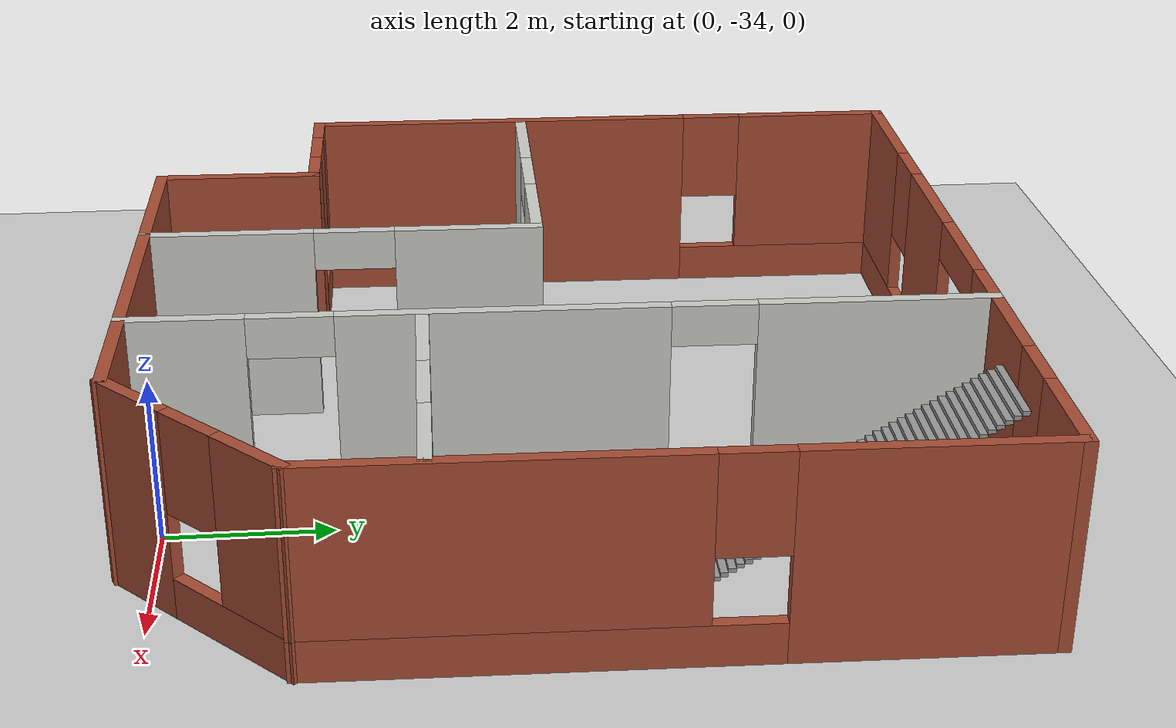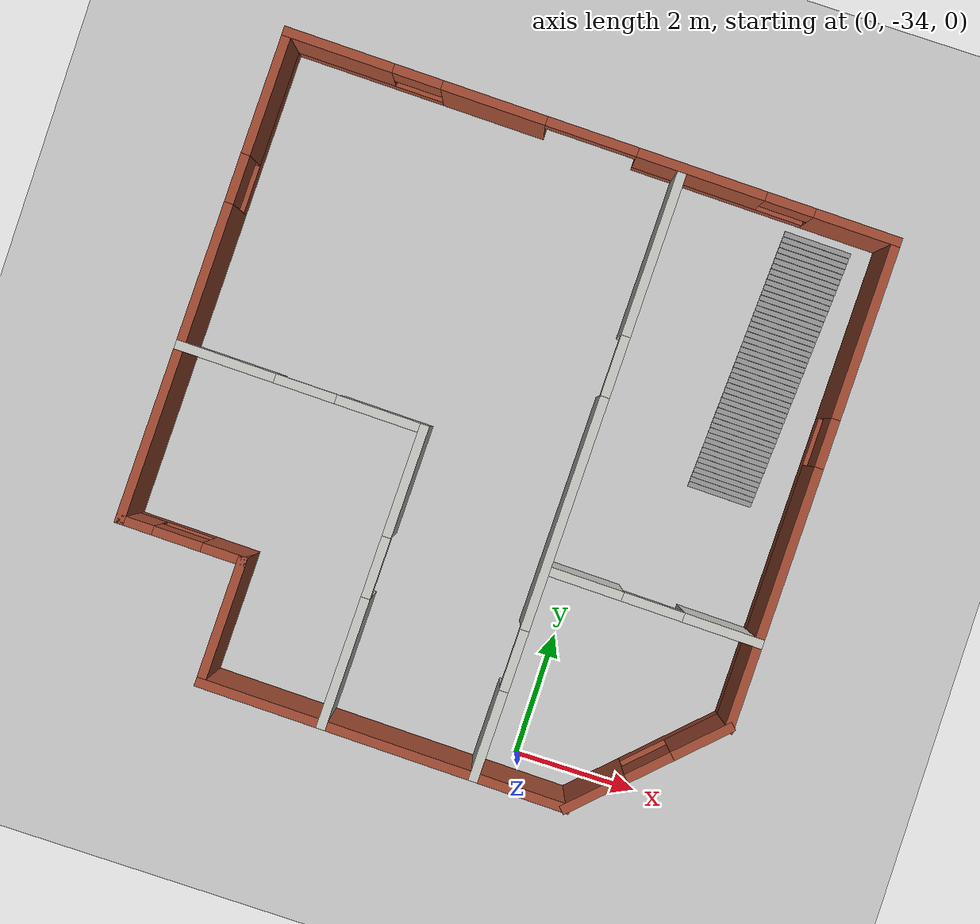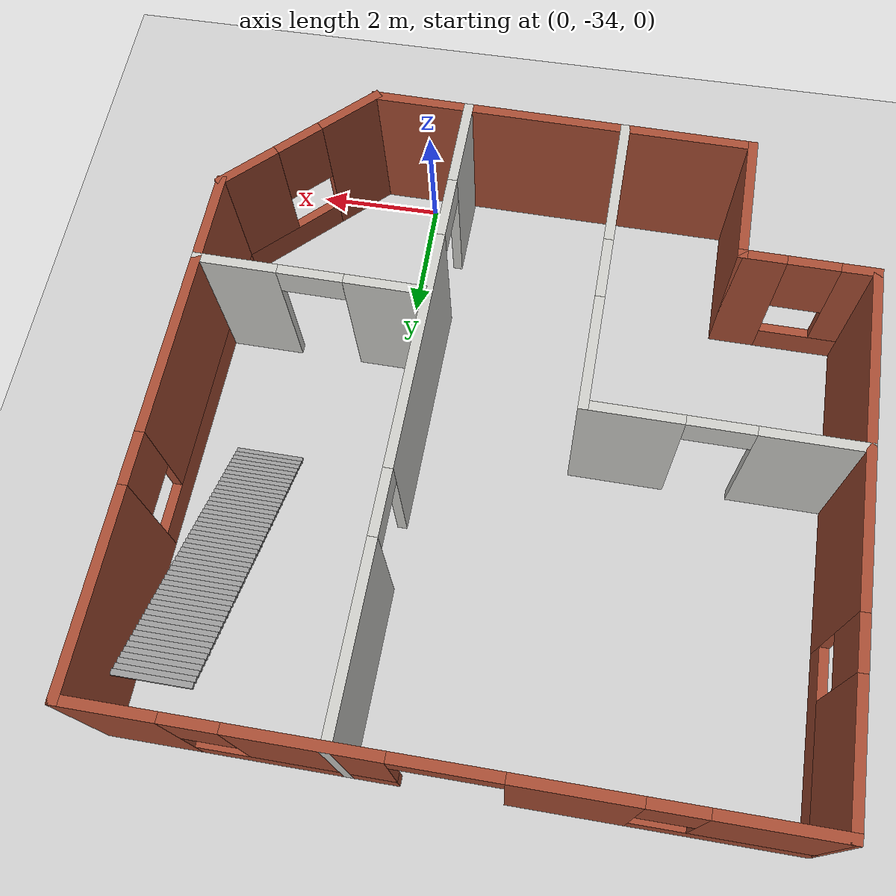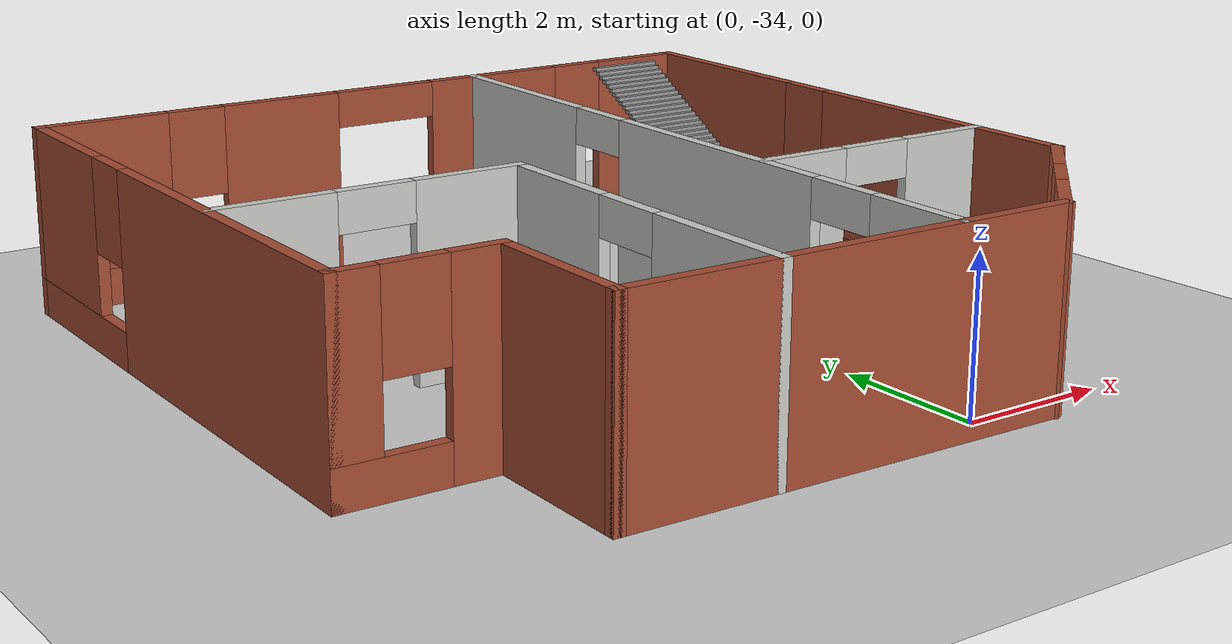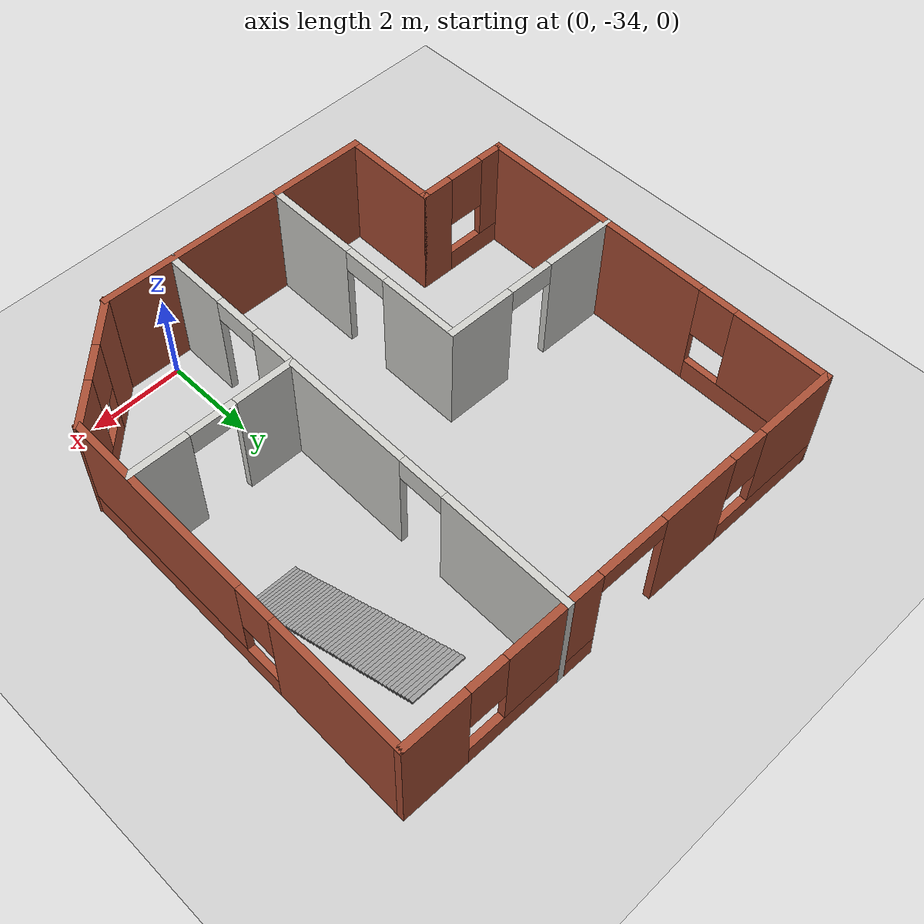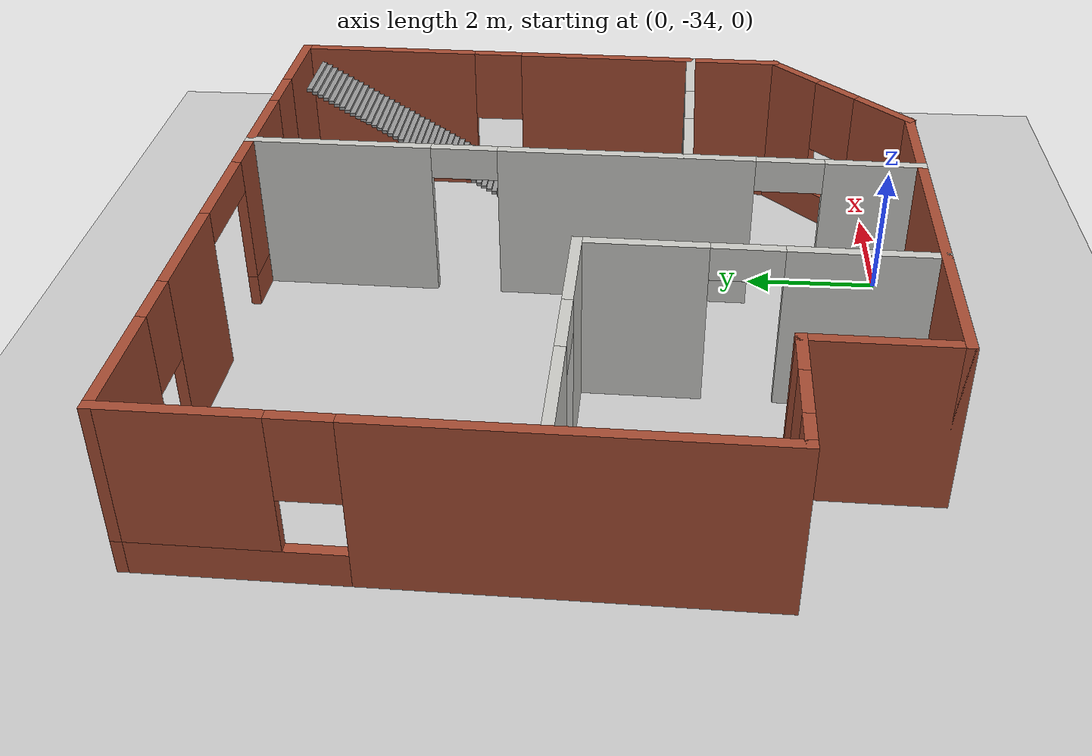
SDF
<sdf version="1.6">
 <world name="default">
  <model name="ground_plane">
   <static>1</static>
   <link name="link">
    <collision name="collision">
     <geometry><plane><normal>0 0 1</normal><size>100 100</size></plane></geometry>
     <surface><friction><ode><mu>100</mu><mu2>50</mu2></ode></friction></surface>
    </collision>
    <visual name="visual">
     <cast_shadows>0</cast_shadows>
     <geometry><plane><normal>0 0 1</normal><size>100 100</size></plane></geometry>
     <material>
      <script><uri>file://media/materials/scripts/gazebo.material</uri><name>Gazebo/Grey</name></script>
     </material>
    </visual>
   </link>
  </model>
  <model name="Multi_10home1">
   <pose>-1.99384 -29.3266 0 0 -0 3.1248</pose>
   <link name="Stairs_2">
    <visual name="Stairs_2_Visual_0">
     <pose>-3.83186 -0.411164 0.025 0 -0 0</pose>
     <geometry><box><size>1.08 0.0846 0.05</size></box></geometry>
     <material>
      <script><uri>file://media/materials/scripts/gazebo.material</uri><name>Gazebo/Grey</name></script>
      <ambient>1 1 1 1</ambient>
     </material>
     <meta><layer>0</layer></meta>
    </visual>
    <collision name="Stairs_2_Collision_0">
     <geometry><box><size>1.08 0.0846 0.05</size></box></geometry>
     <pose>-3.83186 -0.411164 0.025 0 -0 0</pose>
    </collision>
    <visual name="Stairs_2_Visual_1">
     <pose>-3.83186 -0.495764 0.075 0 -0 0</pose>
     <geometry><box><size>1.08 0.0846 0.05</size></box></geometry>
     <material>
      <script><uri>file://media/materials/scripts/gazebo.material</uri><name>Gazebo/Grey</name></script>
      <ambient>1 1 1 1</ambient>
     </material>
     <meta><layer>0</layer></meta>
    </visual>
    <collision name="Stairs_2_Collision_1">
     <geometry><box><size>1.08 0.0846 0.05</size></box></geometry>
     <pose>-3.83186 -0.495764 0.075 0 -0 0</pose>
    </collision>
    <visual name="Stairs_2_Visual_2">
     <pose>-3.83186 -0.580364 0.125 0 -0 0</pose>
     <geometry><box><size>1.08 0.0846 0.05</size></box></geometry>
     <material>
      <script><uri>file://media/materials/scripts/gazebo.material</uri><name>Gazebo/Grey</name></script>
      <ambient>1 1 1 1</ambient>
     </material>
     <meta><layer>0</layer></meta>
    </visual>
    <collision name="Stairs_2_Collision_2">
     <geometry><box><size>1.08 0.0846 0.05</size></box></geometry>
     <pose>-3.83186 -0.580364 0.125 0 -0 0</pose>
    </collision>
    <visual name="Stairs_2_Visual_3">
     <pose>-3.83186 -0.664964 0.175 0 -0 0</pose>
     <geometry><box><size>1.08 0.0846 0.05</size></box></geometry>
     <material>
      <script><uri>file://media/materials/scripts/gazebo.material</uri><name>Gazebo/Grey</name></script>
      <ambient>1 1 1 1</ambient>
     </material>
     <meta><layer>0</layer></meta>
    </visual>
    <collision name="Stairs_2_Collision_3">
     <geometry><box><size>1.08 0.0846 0.05</size></box></geometry>
     <pose>-3.83186 -0.664964 0.175 0 -0 0</pose>
    </collision>
    <visual name="Stairs_2_Visual_4">
     <pose>-3.83186 -0.749564 0.225 0 -0 0</pose>
     <geometry><box><size>1.08 0.0846 0.05</size></box></geometry>
     <material>
      <script><uri>file://media/materials/scripts/gazebo.material</uri><name>Gazebo/Grey</name></script>
      <ambient>1 1 1 1</ambient>
     </material>
     <meta><layer>0</layer></meta>
    </visual>
    <collision name="Stairs_2_Collision_4">
     <geometry><box><size>1.08 0.0846 0.05</size></box></geometry>
     <pose>-3.83186 -0.749564 0.225 0 -0 0</pose>
    </collision>
    <visual name="Stairs_2_Visual_5">
     <pose>-3.83186 -0.834164 0.275 0 -0 0</pose>
     <geometry><box><size>1.08 0.0846 0.05</size></box></geometry>
     <material>
      <script><uri>file://media/materials/scripts/gazebo.material</uri><name>Gazebo/Grey</name></script>
      <ambient>1 1 1 1</ambient>
     </material>
     <meta><layer>0</layer></meta>
    </visual>
    <collision name="Stairs_2_Collision_5">
     <geometry><box><size>1.08 0.0846 0.05</size></box></geometry>
     <pose>-3.83186 -0.834164 0.275 0 -0 0</pose>
    </collision>
    <visual name="Stairs_2_Visual_6">
     <pose>-3.83186 -0.918764 0.325 0 -0 0</pose>
     <geometry><box><size>1.08 0.0846 0.05</size></box></geometry>
     <material>
      <script><uri>file://media/materials/scripts/gazebo.material</uri><name>Gazebo/Grey</name></script>
      <ambient>1 1 1 1</ambient>
     </material>
     <meta><layer>0</layer></meta>
    </visual>
    <collision name="Stairs_2_Collision_6">
     <geometry><box><size>1.08 0.0846 0.05</size></box></geometry>
     <pose>-3.83186 -0.918764 0.325 0 -0 0</pose>
    </collision>
    <visual name="Stairs_2_Visual_7">
     <pose>-3.83186 -1.00336 0.375 0 -0 0</pose>
     <geometry><box><size>1.08 0.0846 0.05</size></box></geometry>
     <material>
      <script><uri>file://media/materials/scripts/gazebo.material</uri><name>Gazebo/Grey</name></script>
      <ambient>1 1 1 1</ambient>
     </material>
     <meta><layer>0</layer></meta>
    </visual>
    <collision name="Stairs_2_Collision_7">
     <geometry><box><size>1.08 0.0846 0.05</size></box></geometry>
     <pose>-3.83186 -1.00336 0.375 0 -0 0</pose>
    </collision>
    <visual name="Stairs_2_Visual_8">
     <pose>-3.83186 -1.08796 0.425 0 -0 0</pose>
     <geometry><box><size>1.08 0.0846 0.05</size></box></geometry>
     <material>
      <script><uri>file://media/materials/scripts/gazebo.material</uri><name>Gazebo/Grey</name></script>
      <ambient>1 1 1 1</ambient>
     </material>
     <meta><layer>0</layer></meta>
    </visual>
    <collision name="Stairs_2_Collision_8">
     <geometry><box><size>1.08 0.0846 0.05</size></box></geometry>
     <pose>-3.83186 -1.08796 0.425 0 -0 0</pose>
    </collision>
    <visual name="Stairs_2_Visual_9">
     <pose>-3.83186 -1.17256 0.475 0 -0 0</pose>
     <geometry><box><size>1.08 0.0846 0.05</size></box></geometry>
     <material>
      <script><uri>file://media/materials/scripts/gazebo.material</uri><name>Gazebo/Grey</name></script>
      <ambient>1 1 1 1</ambient>
     </material>
     <meta><layer>0</layer></meta>
    </visual>
    <collision name="Stairs_2_Collision_9">
     <geometry><box><size>1.08 0.0846 0.05</size></box></geometry>
     <pose>-3.83186 -1.17256 0.475 0 -0 0</pose>
    </collision>
    <visual name="Stairs_2_Visual_10">
     <pose>-3.83186 -1.25716 0.525 0 -0 0</pose>
     <geometry><box><size>1.08 0.0846 0.05</size></box></geometry>
     <material>
      <script><uri>file://media/materials/scripts/gazebo.material</uri><name>Gazebo/Grey</name></script>
      <ambient>1 1 1 1</ambient>
     </material>
     <meta><layer>0</layer></meta>
    </visual>
    <collision name="Stairs_2_Collision_10">
     <geometry><box><size>1.08 0.0846 0.05</size></box></geometry>
     <pose>-3.83186 -1.25716 0.525 0 -0 0</pose>
    </collision>
    <visual name="Stairs_2_Visual_11">
     <pose>-3.83186 -1.34176 0.575 0 -0 0</pose>
     <geometry><box><size>1.08 0.0846 0.05</size></box></geometry>
     <material>
      <script><uri>file://media/materials/scripts/gazebo.material</uri><name>Gazebo/Grey</name></script>
      <ambient>1 1 1 1</ambient>
     </material>
     <meta><layer>0</layer></meta>
    </visual>
    <collision name="Stairs_2_Collision_11">
     <geometry><box><size>1.08 0.0846 0.05</size></box></geometry>
     <pose>-3.83186 -1.34176 0.575 0 -0 0</pose>
    </collision>
    <visual name="Stairs_2_Visual_12">
     <pose>-3.83186 -1.42636 0.625 0 -0 0</pose>
     <geometry><box><size>1.08 0.0846 0.05</size></box></geometry>
     <material>
      <script><uri>file://media/materials/scripts/gazebo.material</uri><name>Gazebo/Grey</name></script>
      <ambient>1 1 1 1</ambient>
     </material>
     <meta><layer>0</layer></meta>
    </visual>
    <collision name="Stairs_2_Collision_12">
     <geometry><box><size>1.08 0.0846 0.05</size></box></geometry>
     <pose>-3.83186 -1.42636 0.625 0 -0 0</pose>
    </collision>
    <visual name="Stairs_2_Visual_13">
     <pose>-3.83186 -1.51096 0.675 0 -0 0</pose>
     <geometry><box><size>1.08 0.0846 0.05</size></box></geometry>
     <material>
      <script><uri>file://media/materials/scripts/gazebo.material</uri><name>Gazebo/Grey</name></script>
      <ambient>1 1 1 1</ambient>
     </material>
     <meta><layer>0</layer></meta>
    </visual>
    <collision name="Stairs_2_Collision_13">
     <geometry><box><size>1.08 0.0846 0.05</size></box></geometry>
     <pose>-3.83186 -1.51096 0.675 0 -0 0</pose>
    </collision>
    <visual name="Stairs_2_Visual_14">
     <pose>-3.83186 -1.59556 0.725 0 -0 0</pose>
     <geometry><box><size>1.08 0.0846 0.05</size></box></geometry>
     <material>
      <script><uri>file://media/materials/scripts/gazebo.material</uri><name>Gazebo/Grey</name></script>
      <ambient>1 1 1 1</ambient>
     </material>
     <meta><layer>0</layer></meta>
    </visual>
    <collision name="Stairs_2_Collision_14">
     <geometry><box><size>1.08 0.0846 0.05</size></box></geometry>
     <pose>-3.83186 -1.59556 0.725 0 -0 0</pose>
    </collision>
    <visual name="Stairs_2_Visual_15">
     <pose>-3.83186 -1.68016 0.775 0 -0 0</pose>
     <geometry><box><size>1.08 0.0846 0.05</size></box></geometry>
     <material>
      <script><uri>file://media/materials/scripts/gazebo.material</uri><name>Gazebo/Grey</name></script>
      <ambient>1 1 1 1</ambient>
     </material>
     <meta><layer>0</layer></meta>
    </visual>
    <collision name="Stairs_2_Collision_15">
     <geometry><box><size>1.08 0.0846 0.05</size></box></geometry>
     <pose>-3.83186 -1.68016 0.775 0 -0 0</pose>
    </collision>
    <visual name="Stairs_2_Visual_16">
     <pose>-3.83186 -1.76476 0.825 0 -0 0</pose>
     <geometry><box><size>1.08 0.0846 0.05</size></box></geometry>
     <material>
      <script><uri>file://media/materials/scripts/gazebo.material</uri><name>Gazebo/Grey</name></script>
      <ambient>1 1 1 1</ambient>
     </material>
     <meta><layer>0</layer></meta>
    </visual>
    <collision name="Stairs_2_Collision_16">
     <geometry><box><size>1.08 0.0846 0.05</size></box></geometry>
     <pose>-3.83186 -1.76476 0.825 0 -0 0</pose>
    </collision>
    <visual name="Stairs_2_Visual_17">
     <pose>-3.83186 -1.84936 0.875 0 -0 0</pose>
     <geometry><box><size>1.08 0.0846 0.05</size></box></geometry>
     <material>
      <script><uri>file://media/materials/scripts/gazebo.material</uri><name>Gazebo/Grey</name></script>
      <ambient>1 1 1 1</ambient>
     </material>
     <meta><layer>0</layer></meta>
    </visual>
    <collision name="Stairs_2_Collision_17">
     <geometry><box><size>1.08 0.0846 0.05</size></box></geometry>
     <pose>-3.83186 -1.84936 0.875 0 -0 0</pose>
    </collision>
    <visual name="Stairs_2_Visual_18">
     <pose>-3.83186 -1.93396 0.925 0 -0 0</pose>
     <geometry><box><size>1.08 0.0846 0.05</size></box></geometry>
     <material>
      <script><uri>file://media/materials/scripts/gazebo.material</uri><name>Gazebo/Grey</name></script>
      <ambient>1 1 1 1</ambient>
     </material>
     <meta><layer>0</layer></meta>
    </visual>
    <collision name="Stairs_2_Collision_18">
     <geometry><box><size>1.08 0.0846 0.05</size></box></geometry>
     <pose>-3.83186 -1.93396 0.925 0 -0 0</pose>
    </collision>
    <visual name="Stairs_2_Visual_19">
     <pose>-3.83186 -2.01856 0.975 0 -0 0</pose>
     <geometry><box><size>1.08 0.0846 0.05</size></box></geometry>
     <material>
      <script><uri>file://media/materials/scripts/gazebo.material</uri><name>Gazebo/Grey</name></script>
      <ambient>1 1 1 1</ambient>
     </material>
     <meta><layer>0</layer></meta>
    </visual>
    <collision name="Stairs_2_Collision_19">
     <geometry><box><size>1.08 0.0846 0.05</size></box></geometry>
     <pose>-3.83186 -2.01856 0.975 0 -0 0</pose>
    </collision>
    <visual name="Stairs_2_Visual_20">
     <pose>-3.83186 -2.10316 1.025 0 -0 0</pose>
     <geometry><box><size>1.08 0.0846 0.05</size></box></geometry>
     <material>
      <script><uri>file://media/materials/scripts/gazebo.material</uri><name>Gazebo/Grey</name></script>
      <ambient>1 1 1 1</ambient>
     </material>
     <meta><layer>0</layer></meta>
    </visual>
    <collision name="Stairs_2_Collision_20">
     <geometry><box><size>1.08 0.0846 0.05</size></box></geometry>
     <pose>-3.83186 -2.10316 1.025 0 -0 0</pose>
    </collision>
    <visual name="Stairs_2_Visual_21">
     <pose>-3.83186 -2.18776 1.075 0 -0 0</pose>
     <geometry><box><size>1.08 0.0846 0.05</size></box></geometry>
     <material>
      <script><uri>file://media/materials/scripts/gazebo.material</uri><name>Gazebo/Grey</name></script>
      <ambient>1 1 1 1</ambient>
     </material>
     <meta><layer>0</layer></meta>
    </visual>
    <collision name="Stairs_2_Collision_21">
     <geometry><box><size>1.08 0.0846 0.05</size></box></geometry>
     <pose>-3.83186 -2.18776 1.075 0 -0 0</pose>
    </collision>
    <visual name="Stairs_2_Visual_22">
     <pose>-3.83186 -2.27236 1.125 0 -0 0</pose>
     <geometry><box><size>1.08 0.0846 0.05</size></box></geometry>
     <material>
      <script><uri>file://media/materials/scripts/gazebo.material</uri><name>Gazebo/Grey</name></script>
      <ambient>1 1 1 1</ambient>
     </material>
     <meta><layer>0</layer></meta>
    </visual>
    <collision name="Stairs_2_Collision_22">
     <geometry><box><size>1.08 0.0846 0.05</size></box></geometry>
     <pose>-3.83186 -2.27236 1.125 0 -0 0</pose>
    </collision>
    <visual name="Stairs_2_Visual_23">
     <pose>-3.83186 -2.35696 1.175 0 -0 0</pose>
     <geometry><box><size>1.08 0.0846 0.05</size></box></geometry>
     <material>
      <script><uri>file://media/materials/scripts/gazebo.material</uri><name>Gazebo/Grey</name></script>
      <ambient>1 1 1 1</ambient>
     </material>
     <meta><layer>0</layer></meta>
    </visual>
    <collision name="Stairs_2_Collision_23">
     <geometry><box><size>1.08 0.0846 0.05</size></box></geometry>
     <pose>-3.83186 -2.35696 1.175 0 -0 0</pose>
    </collision>
    <visual name="Stairs_2_Visual_24">
     <pose>-3.83186 -2.44156 1.225 0 -0 0</pose>
     <geometry><box><size>1.08 0.0846 0.05</size></box></geometry>
     <material>
      <script><uri>file://media/materials/scripts/gazebo.material</uri><name>Gazebo/Grey</name></script>
      <ambient>1 1 1 1</ambient>
     </material>
     <meta><layer>0</layer></meta>
    </visual>
    <collision name="Stairs_2_Collision_24">
     <geometry><box><size>1.08 0.0846 0.05</size></box></geometry>
     <pose>-3.83186 -2.44156 1.225 0 -0 0</pose>
    </collision>
    <visual name="Stairs_2_Visual_25">
     <pose>-3.83186 -2.52616 1.275 0 -0 0</pose>
     <geometry><box><size>1.08 0.0846 0.05</size></box></geometry>
     <material>
      <script><uri>file://media/materials/scripts/gazebo.material</uri><name>Gazebo/Grey</name></script>
      <ambient>1 1 1 1</ambient>
     </material>
     <meta><layer>0</layer></meta>
    </visual>
    <collision name="Stairs_2_Collision_25">
     <geometry><box><size>1.08 0.0846 0.05</size></box></geometry>
     <pose>-3.83186 -2.52616 1.275 0 -0 0</pose>
    </collision>
    <visual name="Stairs_2_Visual_26">
     <pose>-3.83186 -2.61076 1.325 0 -0 0</pose>
     <geometry><box><size>1.08 0.0846 0.05</size></box></geometry>
     <material>
      <script><uri>file://media/materials/scripts/gazebo.material</uri><name>Gazebo/Grey</name></script>
      <ambient>1 1 1 1</ambient>
     </material>
     <meta><layer>0</layer></meta>
    </visual>
    <collision name="Stairs_2_Collision_26">
     <geometry><box><size>1.08 0.0846 0.05</size></box></geometry>
     <pose>-3.83186 -2.61076 1.325 0 -0 0</pose>
    </collision>
    <visual name="Stairs_2_Visual_27">
     <pose>-3.83186 -2.69536 1.375 0 -0 0</pose>
     <geometry><box><size>1.08 0.0846 0.05</size></box></geometry>
     <material>
      <script><uri>file://media/materials/scripts/gazebo.material</uri><name>Gazebo/Grey</name></script>
      <ambient>1 1 1 1</ambient>
     </material>
     <meta><layer>0</layer></meta>
    </visual>
    <collision name="Stairs_2_Collision_27">
     <geometry><box><size>1.08 0.0846 0.05</size></box></geometry>
     <pose>-3.83186 -2.69536 1.375 0 -0 0</pose>
    </collision>
    <visual name="Stairs_2_Visual_28">
     <pose>-3.83186 -2.77996 1.425 0 -0 0</pose>
     <geometry><box><size>1.08 0.0846 0.05</size></box></geometry>
     <material>
      <script><uri>file://media/materials/scripts/gazebo.material</uri><name>Gazebo/Grey</name></script>
      <ambient>1 1 1 1</ambient>
     </material>
     <meta><layer>0</layer></meta>
    </visual>
    <collision name="Stairs_2_Collision_28">
     <geometry><box><size>1.08 0.0846 0.05</size></box></geometry>
     <pose>-3.83186 -2.77996 1.425 0 -0 0</pose>
    </collision>
    <visual name="Stairs_2_Visual_29">
     <pose>-3.83186 -2.86456 1.475 0 -0 0</pose>
     <geometry><box><size>1.08 0.0846 0.05</size></box></geometry>
     <material>
      <script><uri>file://media/materials/scripts/gazebo.material</uri><name>Gazebo/Grey</name></script>
      <ambient>1 1 1 1</ambient>
     </material>
     <meta><layer>0</layer></meta>
    </visual>
    <collision name="Stairs_2_Collision_29">
     <geometry><box><size>1.08 0.0846 0.05</size></box></geometry>
     <pose>-3.83186 -2.86456 1.475 0 -0 0</pose>
    </collision>
    <visual name="Stairs_2_Visual_30">
     <pose>-3.83186 -2.94916 1.525 0 -0 0</pose>
     <geometry><box><size>1.08 0.0846 0.05</size></box></geometry>
     <material>
      <script><uri>file://media/materials/scripts/gazebo.material</uri><name>Gazebo/Grey</name></script>
      <ambient>1 1 1 1</ambient>
     </material>
     <meta><layer>0</layer></meta>
    </visual>
    <collision name="Stairs_2_Collision_30">
     <geometry><box><size>1.08 0.0846 0.05</size></box></geometry>
     <pose>-3.83186 -2.94916 1.525 0 -0 0</pose>
    </collision>
    <visual name="Stairs_2_Visual_31">
     <pose>-3.83186 -3.03376 1.575 0 -0 0</pose>
     <geometry><box><size>1.08 0.0846 0.05</size></box></geometry>
     <material>
      <script><uri>file://media/materials/scripts/gazebo.material</uri><name>Gazebo/Grey</name></script>
      <ambient>1 1 1 1</ambient>
     </material>
     <meta><layer>0</layer></meta>
    </visual>
    <collision name="Stairs_2_Collision_31">
     <geometry><box><size>1.08 0.0846 0.05</size></box></geometry>
     <pose>-3.83186 -3.03376 1.575 0 -0 0</pose>
    </collision>
    <visual name="Stairs_2_Visual_32">
     <pose>-3.83186 -3.11836 1.625 0 -0 0</pose>
     <geometry><box><size>1.08 0.0846 0.05</size></box></geometry>
     <material>
      <script><uri>file://media/materials/scripts/gazebo.material</uri><name>Gazebo/Grey</name></script>
      <ambient>1 1 1 1</ambient>
     </material>
     <meta><layer>0</layer></meta>
    </visual>
    <collision name="Stairs_2_Collision_32">
     <geometry><box><size>1.08 0.0846 0.05</size></box></geometry>
     <pose>-3.83186 -3.11836 1.625 0 -0 0</pose>
    </collision>
    <visual name="Stairs_2_Visual_33">
     <pose>-3.83186 -3.20296 1.675 0 -0 0</pose>
     <geometry><box><size>1.08 0.0846 0.05</size></box></geometry>
     <material>
      <script><uri>file://media/materials/scripts/gazebo.material</uri><name>Gazebo/Grey</name></script>
      <ambient>1 1 1 1</ambient>
     </material>
     <meta><layer>0</layer></meta>
    </visual>
    <collision name="Stairs_2_Collision_33">
     <geometry><box><size>1.08 0.0846 0.05</size></box></geometry>
     <pose>-3.83186 -3.20296 1.675 0 -0 0</pose>
    </collision>
    <visual name="Stairs_2_Visual_34">
     <pose>-3.83186 -3.28756 1.725 0 -0 0</pose>
     <geometry><box><size>1.08 0.0846 0.05</size></box></geometry>
     <material>
      <script><uri>file://media/materials/scripts/gazebo.material</uri><name>Gazebo/Grey</name></script>
      <ambient>1 1 1 1</ambient>
     </material>
     <meta><layer>0</layer></meta>
    </visual>
    <collision name="Stairs_2_Collision_34">
     <geometry><box><size>1.08 0.0846 0.05</size></box></geometry>
     <pose>-3.83186 -3.28756 1.725 0 -0 0</pose>
    </collision>
    <visual name="Stairs_2_Visual_35">
     <pose>-3.83186 -3.37216 1.775 0 -0 0</pose>
     <geometry><box><size>1.08 0.0846 0.05</size></box></geometry>
     <material>
      <script><uri>file://media/materials/scripts/gazebo.material</uri><name>Gazebo/Grey</name></script>
      <ambient>1 1 1 1</ambient>
     </material>
     <meta><layer>0</layer></meta>
    </visual>
    <collision name="Stairs_2_Collision_35">
     <geometry><box><size>1.08 0.0846 0.05</size></box></geometry>
     <pose>-3.83186 -3.37216 1.775 0 -0 0</pose>
    </collision>
    <visual name="Stairs_2_Visual_36">
     <pose>-3.83186 -3.45676 1.825 0 -0 0</pose>
     <geometry><box><size>1.08 0.0846 0.05</size></box></geometry>
     <material>
      <script><uri>file://media/materials/scripts/gazebo.material</uri><name>Gazebo/Grey</name></script>
      <ambient>1 1 1 1</ambient>
     </material>
     <meta><layer>0</layer></meta>
    </visual>
    <collision name="Stairs_2_Collision_36">
     <geometry><box><size>1.08 0.0846 0.05</size></box></geometry>
     <pose>-3.83186 -3.45676 1.825 0 -0 0</pose>
    </collision>
    <visual name="Stairs_2_Visual_37">
     <pose>-3.83186 -3.54136 1.875 0 -0 0</pose>
     <geometry><box><size>1.08 0.0846 0.05</size></box></geometry>
     <material>
      <script><uri>file://media/materials/scripts/gazebo.material</uri><name>Gazebo/Grey</name></script>
      <ambient>1 1 1 1</ambient>
     </material>
     <meta><layer>0</layer></meta>
    </visual>
    <collision name="Stairs_2_Collision_37">
     <geometry><box><size>1.08 0.0846 0.05</size></box></geometry>
     <pose>-3.83186 -3.54136 1.875 0 -0 0</pose>
    </collision>
    <visual name="Stairs_2_Visual_38">
     <pose>-3.83186 -3.62596 1.925 0 -0 0</pose>
     <geometry><box><size>1.08 0.0846 0.05</size></box></geometry>
     <material>
      <script><uri>file://media/materials/scripts/gazebo.material</uri><name>Gazebo/Grey</name></script>
      <ambient>1 1 1 1</ambient>
     </material>
     <meta><layer>0</layer></meta>
    </visual>
    <collision name="Stairs_2_Collision_38">
     <geometry><box><size>1.08 0.0846 0.05</size></box></geometry>
     <pose>-3.83186 -3.62596 1.925 0 -0 0</pose>
    </collision>
    <visual name="Stairs_2_Visual_39">
     <pose>-3.83186 -3.71056 1.975 0 -0 0</pose>
     <geometry><box><size>1.08 0.0846 0.05</size></box></geometry>
     <material>
      <script><uri>file://media/materials/scripts/gazebo.material</uri><name>Gazebo/Grey</name></script>
      <ambient>1 1 1 1</ambient>
     </material>
     <meta><layer>0</layer></meta>
    </visual>
    <collision name="Stairs_2_Collision_39">
     <geometry><box><size>1.08 0.0846 0.05</size></box></geometry>
     <pose>-3.83186 -3.71056 1.975 0 -0 0</pose>
    </collision>
    <visual name="Stairs_2_Visual_40">
     <pose>-3.83186 -3.79516 2.025 0 -0 0</pose>
     <geometry><box><size>1.08 0.0846 0.05</size></box></geometry>
     <material>
      <script><uri>file://media/materials/scripts/gazebo.material</uri><name>Gazebo/Grey</name></script>
      <ambient>1 1 1 1</ambient>
     </material>
     <meta><layer>0</layer></meta>
    </visual>
    <collision name="Stairs_2_Collision_40">
     <geometry><box><size>1.08 0.0846 0.05</size></box></geometry>
     <pose>-3.83186 -3.79516 2.025 0 -0 0</pose>
    </collision>
    <visual name="Stairs_2_Visual_41">
     <pose>-3.83186 -3.87976 2.075 0 -0 0</pose>
     <geometry><box><size>1.08 0.0846 0.05</size></box></geometry>
     <material>
      <script><uri>file://media/materials/scripts/gazebo.material</uri><name>Gazebo/Grey</name></script>
      <ambient>1 1 1 1</ambient>
     </material>
     <meta><layer>0</layer></meta>
    </visual>
    <collision name="Stairs_2_Collision_41">
     <geometry><box><size>1.08 0.0846 0.05</size></box></geometry>
     <pose>-3.83186 -3.87976 2.075 0 -0 0</pose>
    </collision>
    <visual name="Stairs_2_Visual_42">
     <pose>-3.83186 -3.96436 2.125 0 -0 0</pose>
     <geometry><box><size>1.08 0.0846 0.05</size></box></geometry>
     <material>
      <script><uri>file://media/materials/scripts/gazebo.material</uri><name>Gazebo/Grey</name></script>
      <ambient>1 1 1 1</ambient>
     </material>
     <meta><layer>0</layer></meta>
    </visual>
    <collision name="Stairs_2_Collision_42">
     <geometry><box><size>1.08 0.0846 0.05</size></box></geometry>
     <pose>-3.83186 -3.96436 2.125 0 -0 0</pose>
    </collision>
    <visual name="Stairs_2_Visual_43">
     <pose>-3.83186 -4.04896 2.175 0 -0 0</pose>
     <geometry><box><size>1.08 0.0846 0.05</size></box></geometry>
     <material>
      <script><uri>file://media/materials/scripts/gazebo.material</uri><name>Gazebo/Grey</name></script>
      <ambient>1 1 1 1</ambient>
     </material>
     <meta><layer>0</layer></meta>
    </visual>
    <collision name="Stairs_2_Collision_43">
     <geometry><box><size>1.08 0.0846 0.05</size></box></geometry>
     <pose>-3.83186 -4.04896 2.175 0 -0 0</pose>
    </collision>
    <visual name="Stairs_2_Visual_44">
     <pose>-3.83186 -4.13356 2.225 0 -0 0</pose>
     <geometry><box><size>1.08 0.0846 0.05</size></box></geometry>
     <material>
      <script><uri>file://media/materials/scripts/gazebo.material</uri><name>Gazebo/Grey</name></script>
      <ambient>1 1 1 1</ambient>
     </material>
     <meta><layer>0</layer></meta>
    </visual>
    <collision name="Stairs_2_Collision_44">
     <geometry><box><size>1.08 0.0846 0.05</size></box></geometry>
     <pose>-3.83186 -4.13356 2.225 0 -0 0</pose>
    </collision>
    <visual name="Stairs_2_Visual_45">
     <pose>-3.83186 -4.21816 2.275 0 -0 0</pose>
     <geometry><box><size>1.08 0.0846 0.05</size></box></geometry>
     <material>
      <script><uri>file://media/materials/scripts/gazebo.material</uri><name>Gazebo/Grey</name></script>
      <ambient>1 1 1 1</ambient>
     </material>
     <meta><layer>0</layer></meta>
    </visual>
    <collision name="Stairs_2_Collision_45">
     <geometry><box><size>1.08 0.0846 0.05</size></box></geometry>
     <pose>-3.83186 -4.21816 2.275 0 -0 0</pose>
    </collision>
    <visual name="Stairs_2_Visual_46">
     <pose>-3.83186 -4.30276 2.325 0 -0 0</pose>
     <geometry><box><size>1.08 0.0846 0.05</size></box></geometry>
     <material>
      <script><uri>file://media/materials/scripts/gazebo.material</uri><name>Gazebo/Grey</name></script>
      <ambient>1 1 1 1</ambient>
     </material>
     <meta><layer>0</layer></meta>
    </visual>
    <collision name="Stairs_2_Collision_46">
     <geometry><box><size>1.08 0.0846 0.05</size></box></geometry>
     <pose>-3.83186 -4.30276 2.325 0 -0 0</pose>
    </collision>
    <visual name="Stairs_2_Visual_47">
     <pose>-3.83186 -4.38736 2.375 0 -0 0</pose>
     <geometry><box><size>1.08 0.0846 0.05</size></box></geometry>
     <material>
      <script><uri>file://media/materials/scripts/gazebo.material</uri><name>Gazebo/Grey</name></script>
      <ambient>1 1 1 1</ambient>
     </material>
     <meta><layer>0</layer></meta>
    </visual>
    <collision name="Stairs_2_Collision_47">
     <geometry><box><size>1.08 0.0846 0.05</size></box></geometry>
     <pose>-3.83186 -4.38736 2.375 0 -0 0</pose>
    </collision>
    <visual name="Stairs_2_Visual_48">
     <pose>-3.83186 -4.47196 2.425 0 -0 0</pose>
     <geometry><box><size>1.08 0.0846 0.05</size></box></geometry>
     <material>
      <script><uri>file://media/materials/scripts/gazebo.material</uri><name>Gazebo/Grey</name></script>
      <ambient>1 1 1 1</ambient>
     </material>
     <meta><layer>0</layer></meta>
    </visual>
    <collision name="Stairs_2_Collision_48">
     <geometry><box><size>1.08 0.0846 0.05</size></box></geometry>
     <pose>-3.83186 -4.47196 2.425 0 -0 0</pose>
    </collision>
    <visual name="Stairs_2_Visual_49">
     <pose>-3.83186 -4.55656 2.475 0 -0 0</pose>
     <geometry><box><size>1.08 0.0846 0.05</size></box></geometry>
     <material>
      <script><uri>file://media/materials/scripts/gazebo.material</uri><name>Gazebo/Grey</name></script>
      <ambient>1 1 1 1</ambient>
     </material>
     <meta><layer>0</layer></meta>
    </visual>
    <collision name="Stairs_2_Collision_49">
     <geometry><box><size>1.08 0.0846 0.05</size></box></geometry>
     <pose>-3.83186 -4.55656 2.475 0 -0 0</pose>
    </collision>
   </link>
   <link name="Wall_0">
    <pose>0.015533 -5.01553 0 0 -0 0</pose>
    <visual name="Wall_0_Visual_0">
     <pose>-4.36454 0 1.25 0 -0 0</pose>
     <geometry><box><size>1.42092 0.15 2.5</size></box></geometry>
     <material>
      <script><uri>file://media/materials/scripts/gazebo.material</uri><name>Gazebo/Bricks</name></script>
      <ambient>0.996078 0.47451 0.0196078 1</ambient>
     </material>
     <meta><layer>0</layer></meta>
    </visual>
    <collision name="Wall_0_Collision_0">
     <geometry><box><size>1.42092 0.15 2.5</size></box></geometry>
     <pose>-4.36454 0 1.25 0 -0 0</pose>
    </collision>
    <visual name="Wall_0_Visual_1">
     <pose>1.60851 0 1.25 0 -0 0</pose>
     <geometry><box><size>1.71703 0.15 2.5</size></box></geometry>
     <material>
      <script><uri>file://media/materials/scripts/gazebo.material</uri><name>Gazebo/Bricks</name></script>
      <ambient>0.996078 0.47451 0.0196078 1</ambient>
     </material>
     <meta><layer>0</layer></meta>
    </visual>
    <collision name="Wall_0_Collision_1">
     <geometry><box><size>1.71703 0.15 2.5</size></box></geometry>
     <pose>1.60851 0 1.25 0 -0 0</pose>
    </collision>
    <visual name="Wall_0_Visual_2">
     <pose>-2.20204 0 0.25 0 -0 0</pose>
     <geometry><box><size>2.90408 0.15 0.5</size></box></geometry>
     <material>
      <script><uri>file://media/materials/scripts/gazebo.material</uri><name>Gazebo/Bricks</name></script>
      <ambient>0.996078 0.47451 0.0196078 1</ambient>
     </material>
     <meta><layer>0</layer></meta>
    </visual>
    <collision name="Wall_0_Collision_2">
     <geometry><box><size>2.90408 0.15 0.5</size></box></geometry>
     <pose>-2.20204 0 0.25 0 -0 0</pose>
    </collision>
    <visual name="Wall_0_Visual_3">
     <pose>3.77101 0 0.25 0 -0 0</pose>
     <geometry><box><size>2.60798 0.15 0.5</size></box></geometry>
     <material>
      <script><uri>file://media/materials/scripts/gazebo.material</uri><name>Gazebo/Bricks</name></script>
      <ambient>0.996078 0.47451 0.0196078 1</ambient>
     </material>
     <meta><layer>0</layer></meta>
    </visual>
    <collision name="Wall_0_Collision_3">
     <geometry><box><size>2.60798 0.15 0.5</size></box></geometry>
     <pose>3.77101 0 0.25 0 -0 0</pose>
    </collision>
    <visual name="Wall_0_Visual_4">
     <pose>-1.80204 0 1.5 0 -0 0</pose>
     <geometry><box><size>2.10408 0.15 2</size></box></geometry>
     <material>
      <script><uri>file://media/materials/scripts/gazebo.material</uri><name>Gazebo/Bricks</name></script>
      <ambient>0.996078 0.47451 0.0196078 1</ambient>
     </material>
     <meta><layer>0</layer></meta>
    </visual>
    <collision name="Wall_0_Collision_4">
     <geometry><box><size>2.10408 0.15 2</size></box></geometry>
     <pose>-1.80204 0 1.5 0 -0 0</pose>
    </collision>
    <visual name="Wall_0_Visual_5">
     <pose>-1.80204 0 1.5 0 -0 0</pose>
     <geometry><box><size>2.10408 0.15 2</size></box></geometry>
     <material>
      <script><uri>file://media/materials/scripts/gazebo.material</uri><name>Gazebo/Bricks</name></script>
      <ambient>0.996078 0.47451 0.0196078 1</ambient>
     </material>
     <meta><layer>0</layer></meta>
    </visual>
    <collision name="Wall_0_Collision_5">
     <geometry><box><size>2.10408 0.15 2</size></box></geometry>
     <pose>-1.80204 0 1.5 0 -0 0</pose>
    </collision>
    <visual name="Wall_0_Visual_6">
     <pose>4.17101 0 1.5 0 -0 0</pose>
     <geometry><box><size>1.80798 0.15 2</size></box></geometry>
     <material>
      <script><uri>file://media/materials/scripts/gazebo.material</uri><name>Gazebo/Bricks</name></script>
      <ambient>0.996078 0.47451 0.0196078 1</ambient>
     </material>
     <meta><layer>0</layer></meta>
    </visual>
    <collision name="Wall_0_Collision_6">
     <geometry><box><size>1.80798 0.15 2</size></box></geometry>
     <pose>4.17101 0 1.5 0 -0 0</pose>
    </collision>
    <visual name="Wall_0_Visual_7">
     <pose>-3.25408 0 1.9 0 -0 0</pose>
     <geometry><box><size>0.8 0.15 1.2</size></box></geometry>
     <material>
      <script><uri>file://media/materials/scripts/gazebo.material</uri><name>Gazebo/Bricks</name></script>
      <ambient>0.996078 0.47451 0.0196078 1</ambient>
     </material>
     <meta><layer>0</layer></meta>
    </visual>
    <collision name="Wall_0_Collision_7">
     <geometry><box><size>0.8 0.15 1.2</size></box></geometry>
     <pose>-3.25408 0 1.9 0 -0 0</pose>
    </collision>
    <visual name="Wall_0_Visual_8">
     <pose>2.86702 0 1.9 0 -0 0</pose>
     <geometry><box><size>0.8 0.15 1.2</size></box></geometry>
     <material>
      <script><uri>file://media/materials/scripts/gazebo.material</uri><name>Gazebo/Bricks</name></script>
      <ambient>0.996078 0.47451 0.0196078 1</ambient>
     </material>
     <meta><layer>0</layer></meta>
    </visual>
    <collision name="Wall_0_Collision_8">
     <geometry><box><size>0.8 0.15 1.2</size></box></geometry>
     <pose>2.86702 0 1.9 0 -0 0</pose>
    </collision>
    <visual name="Wall_0_Visual_9">
     <pose>0 0 2.25 0 -0 0</pose>
     <geometry><box><size>1.5 0.15 0.5</size></box></geometry>
     <material>
      <script><uri>file://media/materials/scripts/gazebo.material</uri><name>Gazebo/Bricks</name></script>
      <ambient>0.996078 0.47451 0.0196078 1</ambient>
     </material>
     <meta><layer>0</layer></meta>
    </visual>
    <collision name="Wall_0_Collision_9">
     <geometry><box><size>1.5 0.15 0.5</size></box></geometry>
     <pose>0 0 2.25 0 -0 0</pose>
    </collision>
    <visual name="Wall_0_Visual_10">
     <pose>0 0 2.25 0 -0 0</pose>
     <geometry><box><size>1.5 0.15 0.5</size></box></geometry>
     <material>
      <script><uri>file://media/materials/scripts/gazebo.material</uri><name>Gazebo/Bricks</name></script>
      <ambient>0.996078 0.47451 0.0196078 1</ambient>
     </material>
     <meta><layer>0</layer></meta>
    </visual>
    <collision name="Wall_0_Collision_10">
     <geometry><box><size>1.5 0.15 0.5</size></box></geometry>
     <pose>0 0 2.25 0 -0 0</pose>
    </collision>
   </link>
   <link name="Wall_11">
    <pose>-3.98447 3.98447 0 0 -0 -2.35619</pose>
    <visual name="Wall_11_Visual_0">
     <pose>-0.930097 0 1.25 0 -0 0</pose>
     <geometry><box><size>1.11823 0.15 2.5</size></box></geometry>
     <material>
      <script><uri>file://media/materials/scripts/gazebo.material</uri><name>Gazebo/Bricks</name></script>
      <ambient>0.996078 0.47451 0.0196078 1</ambient>
     </material>
     <meta><layer>0</layer></meta>
    </visual>
    <collision name="Wall_11_Collision_0">
     <geometry><box><size>1.11823 0.15 2.5</size></box></geometry>
     <pose>-0.930097 0 1.25 0 -0 0</pose>
    </collision>
    <visual name="Wall_11_Visual_1">
     <pose>0.559117 0 0.25 0 -0 0</pose>
     <geometry><box><size>1.86019 0.15 0.5</size></box></geometry>
     <material>
      <script><uri>file://media/materials/scripts/gazebo.material</uri><name>Gazebo/Bricks</name></script>
      <ambient>0.996078 0.47451 0.0196078 1</ambient>
     </material>
     <meta><layer>0</layer></meta>
    </visual>
    <collision name="Wall_11_Collision_1">
     <geometry><box><size>1.86019 0.15 0.5</size></box></geometry>
     <pose>0.559117 0 0.25 0 -0 0</pose>
    </collision>
    <visual name="Wall_11_Visual_2">
     <pose>0.959117 0 1.5 0 -0 0</pose>
     <geometry><box><size>1.06019 0.15 2</size></box></geometry>
     <material>
      <script><uri>file://media/materials/scripts/gazebo.material</uri><name>Gazebo/Bricks</name></script>
      <ambient>0.996078 0.47451 0.0196078 1</ambient>
     </material>
     <meta><layer>0</layer></meta>
    </visual>
    <collision name="Wall_11_Collision_2">
     <geometry><box><size>1.06019 0.15 2</size></box></geometry>
     <pose>0.959117 0 1.5 0 -0 0</pose>
    </collision>
    <visual name="Wall_11_Visual_3">
     <pose>0.02902 0 1.9 0 -0 0</pose>
     <geometry><box><size>0.8 0.15 1.2</size></box></geometry>
     <material>
      <script><uri>file://media/materials/scripts/gazebo.material</uri><name>Gazebo/Bricks</name></script>
      <ambient>0.996078 0.47451 0.0196078 1</ambient>
     </material>
     <meta><layer>0</layer></meta>
    </visual>
    <collision name="Wall_11_Collision_3">
     <geometry><box><size>0.8 0.15 1.2</size></box></geometry>
     <pose>0.02902 0 1.9 0 -0 0</pose>
    </collision>
   </link>
   <link name="Wall_13">
    <pose>-1.48447 -0.015533 0 0 -0 -1.5708</pose>
    <visual name="Wall_13_Visual_0">
     <pose>-4.33431 0 1.25 0 -0 0</pose>
     <geometry><box><size>1.48138 0.15 2.5</size></box></geometry>
     <material>
      <script><uri>file://media/materials/scripts/gazebo.material</uri><name>Gazebo/CeilingTiled</name></script>
      <ambient>1 1 1 1</ambient>
     </material>
     <meta><layer>0</layer></meta>
    </visual>
    <collision name="Wall_13_Collision_0">
     <geometry><box><size>1.48138 0.15 2.5</size></box></geometry>
     <pose>-4.33431 0 1.25 0 -0 0</pose>
    </collision>
    <visual name="Wall_13_Visual_1">
     <pose>-0.676994 0 1.25 0 -0 0</pose>
     <geometry><box><size>3.83326 0.15 2.5</size></box></geometry>
     <material>
      <script><uri>file://media/materials/scripts/gazebo.material</uri><name>Gazebo/CeilingTiled</name></script>
      <ambient>1 1 1 1</ambient>
     </material>
     <meta><layer>0</layer></meta>
    </visual>
    <collision name="Wall_13_Collision_1">
     <geometry><box><size>3.83326 0.15 2.5</size></box></geometry>
     <pose>-0.676994 0 1.25 0 -0 0</pose>
    </collision>
    <visual name="Wall_13_Visual_2">
     <pose>3.65732 0 1.25 0 -0 0</pose>
     <geometry><box><size>2.83537 0.15 2.5</size></box></geometry>
     <material>
      <script><uri>file://media/materials/scripts/gazebo.material</uri><name>Gazebo/CeilingTiled</name></script>
      <ambient>1 1 1 1</ambient>
     </material>
     <meta><layer>0</layer></meta>
    </visual>
    <collision name="Wall_13_Collision_2">
     <geometry><box><size>2.83537 0.15 2.5</size></box></geometry>
     <pose>3.65732 0 1.25 0 -0 0</pose>
    </collision>
    <visual name="Wall_13_Visual_3">
     <pose>-3.09362 0 2.25 0 -0 0</pose>
     <geometry><box><size>1 0.15 0.5</size></box></geometry>
     <material>
      <script><uri>file://media/materials/scripts/gazebo.material</uri><name>Gazebo/CeilingTiled</name></script>
      <ambient>1 1 1 1</ambient>
     </material>
     <meta><layer>0</layer></meta>
    </visual>
    <collision name="Wall_13_Collision_3">
     <geometry><box><size>1 0.15 0.5</size></box></geometry>
     <pose>-3.09362 0 2.25 0 -0 0</pose>
    </collision>
    <visual name="Wall_13_Visual_4">
     <pose>1.73963 0 2.25 0 -0 0</pose>
     <geometry><box><size>1 0.15 0.5</size></box></geometry>
     <material>
      <script><uri>file://media/materials/scripts/gazebo.material</uri><name>Gazebo/CeilingTiled</name></script>
      <ambient>1 1 1 1</ambient>
     </material>
     <meta><layer>0</layer></meta>
    </visual>
    <collision name="Wall_13_Collision_4">
     <geometry><box><size>1 0.15 0.5</size></box></geometry>
     <pose>1.73963 0 2.25 0 -0 0</pose>
    </collision>
   </link>
   <link name="Wall_15">
    <pose>1.01553 2.55947 0 0 -0 -1.5708</pose>
    <visual name="Wall_15_Visual_0">
     <pose>-1.42282 0 1.25 0 -0 0</pose>
     <geometry><box><size>2.15436 0.15 2.5</size></box></geometry>
     <material>
      <script><uri>file://media/materials/scripts/gazebo.material</uri><name>Gazebo/CeilingTiled</name></script>
      <ambient>1 1 1 1</ambient>
     </material>
     <meta><layer>0</layer></meta>
    </visual>
    <collision name="Wall_15_Collision_0">
     <geometry><box><size>2.15436 0.15 2.5</size></box></geometry>
     <pose>-1.42282 0 1.25 0 -0 0</pose>
    </collision>
    <visual name="Wall_15_Visual_1">
     <pose>1.57718 0 1.25 0 -0 0</pose>
     <geometry><box><size>1.84564 0.15 2.5</size></box></geometry>
     <material>
      <script><uri>file://media/materials/scripts/gazebo.material</uri><name>Gazebo/CeilingTiled</name></script>
      <ambient>1 1 1 1</ambient>
     </material>
     <meta><layer>0</layer></meta>
    </visual>
    <collision name="Wall_15_Collision_1">
     <geometry><box><size>1.84564 0.15 2.5</size></box></geometry>
     <pose>1.57718 0 1.25 0 -0 0</pose>
    </collision>
    <visual name="Wall_15_Visual_2">
     <pose>0.154363 0 2.25 0 -0 0</pose>
     <geometry><box><size>1 0.15 0.5</size></box></geometry>
     <material>
      <script><uri>file://media/materials/scripts/gazebo.material</uri><name>Gazebo/CeilingTiled</name></script>
      <ambient>1 1 1 1</ambient>
     </material>
     <meta><layer>0</layer></meta>
    </visual>
    <collision name="Wall_15_Collision_2">
     <geometry><box><size>1 0.15 0.5</size></box></geometry>
     <pose>0.154363 0 2.25 0 -0 0</pose>
    </collision>
   </link>
   <link name="Wall_16">
    <pose>3.01553 0.134467 0 0 -0 0</pose>
    <visual name="Wall_16_Visual_0">
     <pose>-1.31652 0 1.25 0 -0 0</pose>
     <geometry><box><size>1.51697 0.15 2.5</size></box></geometry>
     <material>
      <script><uri>file://media/materials/scripts/gazebo.material</uri><name>Gazebo/CeilingTiled</name></script>
      <ambient>1 1 1 1</ambient>
     </material>
     <meta><layer>0</layer></meta>
    </visual>
    <collision name="Wall_16_Collision_0">
     <geometry><box><size>1.51697 0.15 2.5</size></box></geometry>
     <pose>-1.31652 0 1.25 0 -0 0</pose>
    </collision>
    <visual name="Wall_16_Visual_1">
     <pose>1.25848 0 1.25 0 -0 0</pose>
     <geometry><box><size>1.63303 0.15 2.5</size></box></geometry>
     <material>
      <script><uri>file://media/materials/scripts/gazebo.material</uri><name>Gazebo/CeilingTiled</name></script>
      <ambient>1 1 1 1</ambient>
     </material>
     <meta><layer>0</layer></meta>
    </visual>
    <collision name="Wall_16_Collision_1">
     <geometry><box><size>1.63303 0.15 2.5</size></box></geometry>
     <pose>1.25848 0 1.25 0 -0 0</pose>
    </collision>
    <visual name="Wall_16_Visual_2">
     <pose>-0.058033 0 2.25 0 -0 0</pose>
     <geometry><box><size>1 0.15 0.5</size></box></geometry>
     <material>
      <script><uri>file://media/materials/scripts/gazebo.material</uri><name>Gazebo/CeilingTiled</name></script>
      <ambient>1 1 1 1</ambient>
     </material>
     <meta><layer>0</layer></meta>
    </visual>
    <collision name="Wall_16_Collision_2">
     <geometry><box><size>1 0.15 0.5</size></box></geometry>
     <pose>-0.058033 0 2.25 0 -0 0</pose>
    </collision>
   </link>
   <link name="Wall_18">
    <pose>-3.23447 1.58447 0 0 -0 0</pose>
    <visual name="Wall_18_Visual_0">
     <pose>-1.17142 0 1.25 0 -0 0</pose>
     <geometry><box><size>1.30715 0.15 2.5</size></box></geometry>
     <material>
      <script><uri>file://media/materials/scripts/gazebo.material</uri><name>Gazebo/CeilingTiled</name></script>
      <ambient>1 1 1 1</ambient>
     </material>
     <meta><layer>0</layer></meta>
    </visual>
    <collision name="Wall_18_Collision_0">
     <geometry><box><size>1.30715 0.15 2.5</size></box></geometry>
     <pose>-1.17142 0 1.25 0 -0 0</pose>
    </collision>
    <visual name="Wall_18_Visual_1">
     <pose>1.15358 0 1.25 0 -0 0</pose>
     <geometry><box><size>1.34285 0.15 2.5</size></box></geometry>
     <material>
      <script><uri>file://media/materials/scripts/gazebo.material</uri><name>Gazebo/CeilingTiled</name></script>
      <ambient>1 1 1 1</ambient>
     </material>
     <meta><layer>0</layer></meta>
    </visual>
    <collision name="Wall_18_Collision_1">
     <geometry><box><size>1.34285 0.15 2.5</size></box></geometry>
     <pose>1.15358 0 1.25 0 -0 0</pose>
    </collision>
    <visual name="Wall_18_Visual_2">
     <pose>-0.017849 0 2.25 0 -0 0</pose>
     <geometry><box><size>1 0.15 0.5</size></box></geometry>
     <material>
      <script><uri>file://media/materials/scripts/gazebo.material</uri><name>Gazebo/CeilingTiled</name></script>
      <ambient>1 1 1 1</ambient>
     </material>
     <meta><layer>0</layer></meta>
    </visual>
    <collision name="Wall_18_Collision_2">
     <geometry><box><size>1 0.15 0.5</size></box></geometry>
     <pose>-0.017849 0 2.25 0 -0 0</pose>
    </collision>
   </link>
   <link name="Wall_2">
    <pose>-4.98447 -1.01553 0 0 -0 1.5708</pose>
    <visual name="Wall_2_Visual_0">
     <pose>-2.5759 0 1.25 0 -0 0</pose>
     <geometry><box><size>2.99819 0.15 2.5</size></box></geometry>
     <material>
      <script><uri>file://media/materials/scripts/gazebo.material</uri><name>Gazebo/Bricks</name></script>
      <ambient>0.996078 0.47451 0.0196078 1</ambient>
     </material>
     <meta><layer>0</layer></meta>
    </visual>
    <collision name="Wall_2_Collision_0">
     <geometry><box><size>2.99819 0.15 2.5</size></box></geometry>
     <pose>-2.5759 0 1.25 0 -0 0</pose>
    </collision>
    <visual name="Wall_2_Visual_1">
     <pose>1.4991 0 0.25 0 -0 0</pose>
     <geometry><box><size>5.15181 0.15 0.5</size></box></geometry>
     <material>
      <script><uri>file://media/materials/scripts/gazebo.material</uri><name>Gazebo/Bricks</name></script>
      <ambient>0.996078 0.47451 0.0196078 1</ambient>
     </material>
     <meta><layer>0</layer></meta>
    </visual>
    <collision name="Wall_2_Collision_1">
     <geometry><box><size>5.15181 0.15 0.5</size></box></geometry>
     <pose>1.4991 0 0.25 0 -0 0</pose>
    </collision>
    <visual name="Wall_2_Visual_2">
     <pose>1.8991 0 1.5 0 -0 0</pose>
     <geometry><box><size>4.35181 0.15 2</size></box></geometry>
     <material>
      <script><uri>file://media/materials/scripts/gazebo.material</uri><name>Gazebo/Bricks</name></script>
      <ambient>0.996078 0.47451 0.0196078 1</ambient>
     </material>
     <meta><layer>0</layer></meta>
    </visual>
    <collision name="Wall_2_Collision_2">
     <geometry><box><size>4.35181 0.15 2</size></box></geometry>
     <pose>1.8991 0 1.5 0 -0 0</pose>
    </collision>
    <visual name="Wall_2_Visual_3">
     <pose>-0.676808 0 1.9 0 -0 0</pose>
     <geometry><box><size>0.8 0.15 1.2</size></box></geometry>
     <material>
      <script><uri>file://media/materials/scripts/gazebo.material</uri><name>Gazebo/Bricks</name></script>
      <ambient>0.996078 0.47451 0.0196078 1</ambient>
     </material>
     <meta><layer>0</layer></meta>
    </visual>
    <collision name="Wall_2_Collision_3">
     <geometry><box><size>0.8 0.15 1.2</size></box></geometry>
     <pose>-0.676808 0 1.9 0 -0 0</pose>
    </collision>
   </link>
   <link name="Wall_4">
    <collision name="Wall_4_Collision">
     <geometry><box><size>6.15 0.15 2.5</size></box></geometry>
     <pose>0 0 1.25 0 -0 0</pose>
    </collision>
    <visual name="Wall_4_Visual">
     <pose>0 0 1.25 0 -0 0</pose>
     <geometry><box><size>6.15 0.15 2.5</size></box></geometry>
     <material>
      <script><uri>file://media/materials/scripts/gazebo.material</uri><name>Gazebo/Bricks</name></script>
      <ambient>0.996078 0.47451 0.0196078 1</ambient>
     </material>
     <meta><layer>0</layer></meta>
    </visual>
    <pose>0.015533 4.98447 0 0 -0 0</pose>
   </link>
   <link name="Wall_6">
    <collision name="Wall_6_Collision">
     <geometry><box><size>2.15 0.15 2.5</size></box></geometry>
     <pose>0 0 1.25 0 -0 0</pose>
    </collision>
    <visual name="Wall_6_Visual">
     <pose>0 0 1.25 0 -0 0</pose>
     <geometry><box><size>2.15 0.15 2.5</size></box></geometry>
     <material>
      <script><uri>file://media/materials/scripts/gazebo.material</uri><name>Gazebo/Bricks</name></script>
      <ambient>0.996078 0.47451 0.0196078 1</ambient>
     </material>
     <meta><layer>0</layer></meta>
    </visual>
    <pose>3.01553 3.98447 0 0 -0 -1.5708</pose>
   </link>
   <link name="Wall_7">
    <pose>4.01553 2.98447 0 0 -0 0</pose>
    <visual name="Wall_7_Visual_0">
     <pose>-0.705949 0 1.25 0 -0 0</pose>
     <geometry><box><size>0.738103 0.15 2.5</size></box></geometry>
     <material>
      <script><uri>file://media/materials/scripts/gazebo.material</uri><name>Gazebo/Bricks</name></script>
      <ambient>0.996078 0.47451 0.0196078 1</ambient>
     </material>
     <meta><layer>0</layer></meta>
    </visual>
    <collision name="Wall_7_Collision_0">
     <geometry><box><size>0.738103 0.15 2.5</size></box></geometry>
     <pose>-0.705949 0 1.25 0 -0 0</pose>
    </collision>
    <visual name="Wall_7_Visual_1">
     <pose>0.369051 0 0.25 0 -0 0</pose>
     <geometry><box><size>1.4119 0.15 0.5</size></box></geometry>
     <material>
      <script><uri>file://media/materials/scripts/gazebo.material</uri><name>Gazebo/Bricks</name></script>
      <ambient>0.996078 0.47451 0.0196078 1</ambient>
     </material>
     <meta><layer>0</layer></meta>
    </visual>
    <collision name="Wall_7_Collision_1">
     <geometry><box><size>1.4119 0.15 0.5</size></box></geometry>
     <pose>0.369051 0 0.25 0 -0 0</pose>
    </collision>
    <visual name="Wall_7_Visual_2">
     <pose>0.769051 0 1.5 0 -0 0</pose>
     <geometry><box><size>0.611897 0.15 2</size></box></geometry>
     <material>
      <script><uri>file://media/materials/scripts/gazebo.material</uri><name>Gazebo/Bricks</name></script>
      <ambient>0.996078 0.47451 0.0196078 1</ambient>
     </material>
     <meta><layer>0</layer></meta>
    </visual>
    <collision name="Wall_7_Collision_2">
     <geometry><box><size>0.611897 0.15 2</size></box></geometry>
     <pose>0.769051 0 1.5 0 -0 0</pose>
    </collision>
    <visual name="Wall_7_Visual_3">
     <pose>0.063103 0 1.9 0 -0 0</pose>
     <geometry><box><size>0.8 0.15 1.2</size></box></geometry>
     <material>
      <script><uri>file://media/materials/scripts/gazebo.material</uri><name>Gazebo/Bricks</name></script>
      <ambient>0.996078 0.47451 0.0196078 1</ambient>
     </material>
     <meta><layer>0</layer></meta>
    </visual>
    <collision name="Wall_7_Collision_3">
     <geometry><box><size>0.8 0.15 1.2</size></box></geometry>
     <pose>0.063103 0 1.9 0 -0 0</pose>
    </collision>
   </link>
   <link name="Wall_9">
    <pose>5.01553 -1.01553 0 0 -0 -1.5708</pose>
    <visual name="Wall_9_Visual_0">
     <pose>-1.44177 0 1.25 0 -0 0</pose>
     <geometry><box><size>5.26646 0.15 2.5</size></box></geometry>
     <material>
      <script><uri>file://media/materials/scripts/gazebo.material</uri><name>Gazebo/Bricks</name></script>
      <ambient>0.996078 0.47451 0.0196078 1</ambient>
     </material>
     <meta><layer>0</layer></meta>
    </visual>
    <collision name="Wall_9_Collision_0">
     <geometry><box><size>5.26646 0.15 2.5</size></box></geometry>
     <pose>-1.44177 0 1.25 0 -0 0</pose>
    </collision>
    <visual name="Wall_9_Visual_1">
     <pose>2.63323 0 0.25 0 -0 0</pose>
     <geometry><box><size>2.88354 0.15 0.5</size></box></geometry>
     <material>
      <script><uri>file://media/materials/scripts/gazebo.material</uri><name>Gazebo/Bricks</name></script>
      <ambient>0.996078 0.47451 0.0196078 1</ambient>
     </material>
     <meta><layer>0</layer></meta>
    </visual>
    <collision name="Wall_9_Collision_1">
     <geometry><box><size>2.88354 0.15 0.5</size></box></geometry>
     <pose>2.63323 0 0.25 0 -0 0</pose>
    </collision>
    <visual name="Wall_9_Visual_2">
     <pose>3.03323 0 1.5 0 -0 0</pose>
     <geometry><box><size>2.08354 0.15 2</size></box></geometry>
     <material>
      <script><uri>file://media/materials/scripts/gazebo.material</uri><name>Gazebo/Bricks</name></script>
      <ambient>0.996078 0.47451 0.0196078 1</ambient>
     </material>
     <meta><layer>0</layer></meta>
    </visual>
    <collision name="Wall_9_Collision_2">
     <geometry><box><size>2.08354 0.15 2</size></box></geometry>
     <pose>3.03323 0 1.5 0 -0 0</pose>
    </collision>
    <visual name="Wall_9_Visual_3">
     <pose>1.59146 0 1.9 0 -0 0</pose>
     <geometry><box><size>0.8 0.15 1.2</size></box></geometry>
     <material>
      <script><uri>file://media/materials/scripts/gazebo.material</uri><name>Gazebo/Bricks</name></script>
      <ambient>0.996078 0.47451 0.0196078 1</ambient>
     </material>
     <meta><layer>0</layer></meta>
    </visual>
    <collision name="Wall_9_Collision_3">
     <geometry><box><size>0.8 0.15 1.2</size></box></geometry>
     <pose>1.59146 0 1.9 0 -0 0</pose>
    </collision>
   </link>
   <static>1</static>
  </model>
 </world>
</sdf>
